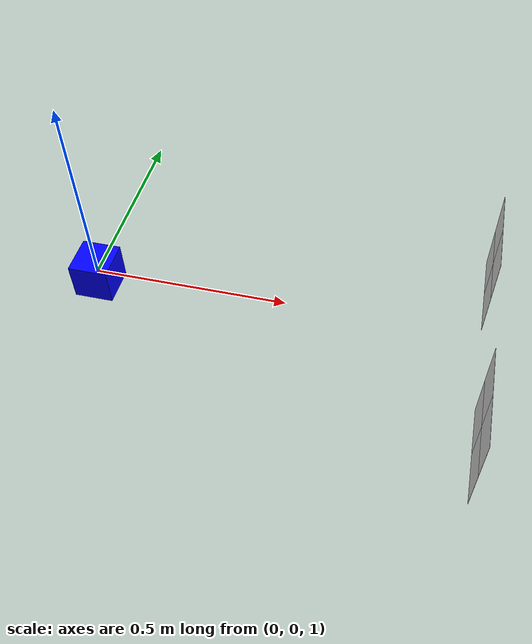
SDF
<?xml version="1.0" ?>

<sdf version="1.10">
  <world name="cam_world">
    <gravity>0 0 -9.81</gravity>
    <physics name="1ms" type="ignored">
      <max_step_size>0.001</max_step_size>
      <real_time_factor>1.0</real_time_factor>
    </physics>
    <plugin filename="gz-sim-physics-system" name="gz::sim::systems::Physics">
    </plugin>
    <plugin filename="gz-sim-scene-broadcaster-system" name="gz::sim::systems::SceneBroadcaster">
    </plugin>
    <plugin filename="ignition-gazebo-sensors-system" name="ignition::gazebo::systems::Sensors">
      <render_engine>ogre</render_engine>
    </plugin>
    <plugin filename="gz-sim-imu-system" name="gz::sim::systems::Imu">
    </plugin>
    <gui fullscreen="0">
      <plugin filename="MinimalScene" name="3D View">
        <gz-gui>
          <title>3D View</title>
          <property type="bool" key="showTitleBar">false</property>
          <property type="string" key="state">docked</property>
        </gz-gui>
        <engine>ogre2</engine>
        <scene>scene</scene>
        <ambient_light>0.4 0.4 0.4</ambient_light>
        <background_color>0.8 0.8 0.8</background_color>
        <camera_pose>-6 0 6 0 0.5 0</camera_pose>
        <camera_clip>
          <near>0.25</near>
          <far>25000</far>
        </camera_clip>
      </plugin>
      <plugin filename="GzSceneManager" name="Scene Manager">
        <gz-gui>
          <property key="resizable" type="bool">false</property>
          <property key="width" type="double">5</property>
          <property key="height" type="double">5</property>
          <property key="state" type="string">floating</property>
          <property key="showTitleBar" type="bool">false</property>
        </gz-gui>
      </plugin>
      <plugin filename="WorldControl" name="World control">
        <gz-gui>
          <title>World control</title>
          <property type="bool" key="showTitleBar">false</property>
          <property type="bool" key="resizable">false</property>
          <property type="double" key="height">72</property>
          <property type="double" key="width">121</property>
          <property type="double" key="z">1</property>

          <property type="string" key="state">floating</property>
          <anchors target="3D View">
            <line own="left" target="left"/>
            <line own="bottom" target="bottom"/>
          </anchors>
        </gz-gui>

        <play_pause>true</play_pause>
        <step>true</step>
        <start_paused>true</start_paused>
        <service>/world/world_demo/control</service>
        <stats_topic>/world/world_demo/stats</stats_topic>
      </plugin>
      <plugin filename="WorldStats" name="World stats">
        <gz-gui>
          <title>World stats</title>
          <property type="bool" key="showTitleBar">false</property>
          <property type="bool" key="resizable">false</property>
          <property type="double" key="height">110</property>
          <property type="double" key="width">290</property>
          <property type="double" key="z">1</property>
          <property type="string" key="state">floating</property>
          <anchors target="3D View">
            <line own="right" target="right"/>
            <line own="bottom" target="bottom"/>
          </anchors>
        </gz-gui>

        <sim_time>true</sim_time>
        <real_time>true</real_time>
        <real_time_factor>true</real_time_factor>
        <iterations>true</iterations>
        <topic>/world/world_demo/stats</topic>
      </plugin>
      <plugin filename="InteractiveViewControl" name="Interactive view control">
        <gz-gui>
        </gz-gui>
      </plugin>
      <plugin filename="EntityTree" name="Entity tree">
      </plugin>
      <plugin filename="ImageDisplay" name="Image Display">
        <topic>camera</topic>
      </plugin>
    </gui>
    <light type="directional" name="sun">
      <cast_shadows>false</cast_shadows>
      <pose>0 0 10 0 0 0</pose>
      <diffuse>0.8 0.8 0.8 1</diffuse>
      <specular>0.0 0.0 0.0 1</specular>
      <attenuation>
        <range>1000</range>
        <constant>0.9</constant>
        <linear>0.01</linear>
        <quadratic>0.001</quadratic>
      </attenuation>
      <direction>-0.5 0.1 -0.9</direction>
    </light>
    <scene>
      <ambient>1.0 1.0 1.0</ambient>
      <background>0.8 0.8 0.8</background>
      <grid>true</grid>
    </scene>
    <model name="ground_plane">
      <static>true</static>
      <link name="link">
        <collision name="collision">
          <geometry>
            <plane>
              <normal>0 0 1</normal>
            </plane>
          </geometry>
        </collision>
      </link>
    </model>
    <model name='arm_with_camera' canonical_link="base_link_arm">
      <pose> 0 0 1.0 0 0 0</pose>
      <link name="base_link_arm">
        <inertial>
          <mass>
            1e-9
          </mass>
          <inertia>
            <ixx>1e-9</ixx>
            <iyy>1e-9</iyy>
            <izz>1e-9</izz>
          </inertia>
        </inertial>
      </link>
      <include>
        <uri>arm</uri>
        <name>arm</name>
        <pose>0 0 0.0 0 0 0</pose>
      </include>
      <include>
        <uri>crooked_rig</uri>
        <name>rig</name>
        <pose>0 0 0 0 0 0</pose>
      </include>
      <joint name='world_joint' type='fixed'>
        <parent>world</parent>
        <child>base_link_arm</child>
      </joint>
      <joint name='arm_joint' type='fixed'>
        <parent>base_link_arm</parent>
        <child>arm::start_link</child>
      </joint>
      <joint name='gripper_joint' type='fixed'>
        <parent>arm::gripper_link</parent>
        <child>rig::base_link</child>
      </joint>
    </model>

    <include>
      <uri>board_00</uri>
      <name>board_00</name>
      <pose relative_to='world'>1.0 0.25 1.0 1.5707963268 0 -1.5707963268</pose>
      <static>1</static>
    </include>
    <include>
      <uri>board_04</uri>
      <name>board_04</name>
      <pose relative_to='world'>1.0 -0.25 1.0 1.5707963268 0 -1.5707963268</pose>
      <static>1</static>
    </include>
  </world>
</sdf>

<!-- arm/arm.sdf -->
<sdf version="1.5">
  <model name='arm' canonical_link="start_link">
    <link name="start_link">
      <inertial>
        <mass>  1e-9 </mass>
        <inertia>
          <ixx>1e-9</ixx>
          <iyy>1e-9</iyy>
          <izz>1e-9</izz>
        </inertia>
      </inertial>
    </link>
    <link name="link_trans_x">
      <pose relative_to="start_link">0 0 0 0 0 0</pose>
      <inertial>
        <mass> 1e-9 </mass>
        <inertia>
          <ixx>1e-9</ixx>
          <iyy>1e-9</iyy>
          <izz>1e-9</izz>
        </inertia>
      </inertial>
    </link>
    <link name="link_trans_y">
      <pose relative_to="link_trans_x">0 0 0 0 0 0</pose>
      <inertial>
        <mass> 1e-9 </mass>
        <inertia>
          <ixx>1e-9</ixx>
          <iyy>1e-9</iyy>
          <izz>1e-9</izz>
        </inertia>
      </inertial>
    </link>
    <link name="link_trans_z">
      <pose relative_to="link_trans_y">0 0 0 0 0 0</pose>
      <inertial>
        <mass> 1e-9 </mass>
        <inertia>
          <ixx>1e-9</ixx>
          <iyy>1e-9</iyy>
          <izz>1e-9</izz>
        </inertia>
      </inertial>
    </link>
    <link name="link_rot_z">
      <pose relative_to="link_trans_z">0 0 0 0 0 0</pose>
      <inertial>
        <mass> 1e-9 </mass>
        <inertia>
          <ixx>1e-3</ixx>
          <iyy>1e-3</iyy>
          <izz>1e-3</izz>
        </inertia>
      </inertial>
    </link>
    <link name="link_rot_y">
      <pose relative_to="link_rot_z">0 0 0 0 0 0</pose>
      <inertial>
        <mass> 1e-9 </mass>
        <inertia>
          <ixx>1e-3</ixx>
          <iyy>1e-3</iyy>
          <izz>1e-3</izz>
        </inertia>
      </inertial>
    </link>
    <link name="gripper_link">
      <pose relative_to='link_rot_y'>0 0 0.0 0 0 0</pose>
      <inertial>
        <mass> 1e-9 </mass>
        <inertia>
          <ixx>1e-3</ixx>
          <iyy>1e-3</iyy>
          <izz>1e-3</izz>
        </inertia>
      </inertial>
    </link>
    <joint name='joint_trans_x' type='prismatic'>
      <parent>start_link</parent>
      <child>link_trans_x</child>
      <axis>
        <xyz>1 0 0</xyz>
        <limit>
          <lower>-1.0e6</lower>
          <upper>1.0e6</upper>
        </limit>
      </axis>
    </joint>
    <joint name='joint_trans_y' type='prismatic'>
      <parent>link_trans_x</parent>
      <child>link_trans_y</child>
      <axis>
        <xyz>0 1 0</xyz>
        <limit>
          <lower>-1.0e6</lower>
          <upper>1.0e6</upper>
        </limit>
      </axis>
    </joint>
    <joint name='joint_trans_z' type='prismatic'>
      <parent>link_trans_y</parent>
      <child>link_trans_z</child>
      <axis>
        <xyz>0 0 1</xyz>
        <limit>
          <lower>-1.0e6</lower>
          <upper>1.0e6</upper>
        </limit>
      </axis>
    </joint>
    <joint name='joint_rot_z' type='revolute'>
      <parent>link_trans_z</parent>
      <child>link_rot_z</child>
      <axis>
        <xyz>0 0 1</xyz>
        <limit>
          <lower>-1.0e6</lower>
          <upper>1.0e6</upper>
        </limit>
      </axis>
    </joint>
    <joint name='joint_rot_y' type='revolute'>
      <parent>link_rot_z</parent>
      <child>link_rot_y</child>
      <axis>
        <xyz>0 1 0</xyz>
        <limit>
          <lower>-1.0e10</lower>
          <upper>1.0e10</upper>
        </limit>
      </axis>
    </joint>
    <joint name='joint_rot_x' type='revolute'>
      <parent>link_rot_y</parent>
      <child>gripper_link</child>
      <axis>
        <xyz>1 0 0</xyz>
        <limit>
          <lower>-1.0e10</lower>
          <upper>1.0e10</upper>
        </limit>
      </axis>
    </joint>

    <!-- ++++++++++++++ CONTROLLERS ++++++++++++++++ -->
    <plugin filename="gz-sim-joint-position-controller-system" name="gz::sim::systems::JointPositionController">
      <joint_name>joint_trans_x</joint_name>
      <topic>x_trans_position</topic>
      <p_gain>0.5</p_gain>
      <i_gain>0.0</i_gain>
      <d_gain>0.5</d_gain>
      <i_max>1e-9</i_max>
      <i_min>-1e-9</i_min>
      <cmd_max>1.0</cmd_max>
      <cmd_min>-1.0</cmd_min>
    </plugin>

    <plugin filename="gz-sim-joint-position-controller-system" name="gz::sim::systems::JointPositionController">
      <joint_name>joint_trans_y</joint_name>
      <topic>y_trans_position</topic>
      <p_gain>0.5</p_gain>
      <i_gain>0.0</i_gain>
      <d_gain>0.5</d_gain>
      <i_max>1e-9</i_max>
      <i_min>-1e-9</i_min>
      <cmd_max>1.0</cmd_max>
      <cmd_min>-1.0</cmd_min>
    </plugin>

    <plugin filename="gz-sim-joint-position-controller-system" name="gz::sim::systems::JointPositionController">
      <joint_name>joint_trans_z</joint_name>
      <topic>z_trans_position</topic>
      <p_gain>0.5</p_gain>
      <i_gain>0.0</i_gain>
      <d_gain>0.5</d_gain>
      <i_max>1e-9</i_max>
      <i_min>-1e-9</i_min>
      <cmd_max>3.0</cmd_max>
      <cmd_min>-3.0</cmd_min>
      <cmd_offset>0.981</cmd_offset>
    </plugin>
    <!-- rotational controllers -->
    <plugin filename="gz-sim-joint-position-controller-system" name="gz::sim::systems::JointPositionController">
      <joint_name>joint_rot_x</joint_name>
      <topic>x_rot_position</topic>
      <p_gain>1.0</p_gain>
      <i_gain>0.0</i_gain>
      <d_gain>0.2</d_gain>
      <i_max>1</i_max>
      <i_min>-1</i_min>
      <cmd_max>2</cmd_max>
      <cmd_min>-2</cmd_min>
    </plugin>
    <plugin filename="gz-sim-joint-position-controller-system" name="gz::sim::systems::JointPositionController">
      <joint_name>joint_rot_y</joint_name>
      <topic>y_rot_position</topic>
      <p_gain>1.0</p_gain>
      <i_gain>0.0</i_gain>
      <d_gain>0.2</d_gain>
      <i_max>1</i_max>
      <i_min>-1</i_min>
      <cmd_max>2</cmd_max>
      <cmd_min>-2</cmd_min>
    </plugin>
    <plugin filename="gz-sim-joint-position-controller-system" name="gz::sim::systems::JointPositionController">
      <joint_name>joint_rot_z</joint_name>
      <topic>z_rot_position</topic>
      <p_gain>1.0</p_gain>
      <i_gain>0.0</i_gain>
      <d_gain>0.2</d_gain>
      <i_max>1</i_max>
      <i_min>-1</i_min>
      <cmd_max>2</cmd_max>
      <cmd_min>-2</cmd_min>
    </plugin>
    <!-- +++++++++++++++++ END OF CONTROLLERS ++++++++++++++++++++-->
  </model>
</sdf>

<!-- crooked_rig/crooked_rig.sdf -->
<sdf version="1.5">
    <model name='crooked_rig' canonical_link="base_link">
        <plugin filename="gz-sim-odometry-publisher-system" name="gz::sim::systems::OdometryPublisher">
            <odom_frame>odom_world</odom_frame>
            <robot_base_frame>base_link</robot_base_frame>
            <dimensions>3</dimensions>
        </plugin>
        <link name="base_link">
            <visual name="visual">
                <geometry>
                    <box>
                        <size>0.1 0.1 0.1</size>
                    </box>
                </geometry>
                <material>
                    <ambient>0.0 0.0 1.0 1</ambient>
                    <diffuse>0.0 0.0 1.0 1</diffuse>
                    <specular>0.0 0.0 1.0 1</specular>
                </material>
            </visual>
            <collision name="collision">
                <geometry>
                    <box>
                        <size>0.1 0.1 0.1</size>
                    </box>
                </geometry>
            </collision>
            <inertial>
                <mass> 1e-1 </mass>
                <inertia>
                    <ixx>1e-3</ixx>
                    <iyy>1e-3</iyy>
                    <izz>1e-3</izz>
                </inertia>
            </inertial>
            <sensor name="camera" type="camera">
                <camera>
                    <horizontal_fov>1.349481884447</horizontal_fov>
                    <image>
                        <width>4096</width>
                        <height>2560</height>
                    </image>
                    <clip>
                        <near>0.1</near>
                        <far>100</far>
                    </clip>
                </camera>
                <always_on>1</always_on>
                <update_rate>10</update_rate>
                <visualize>true</visualize>
                <topic>camera</topic>
            </sensor>
            <sensor name="imu_sensor" type="imu">
                <always_on>1</always_on>
                <update_rate>1000</update_rate>
                <visualize>true</visualize>
                <topic>imu</topic>
                <pose>0.1 0 0 0 0.0 0 </pose>
            </sensor>
        </link>
    </model>
</sdf>

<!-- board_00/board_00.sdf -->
<sdf version="1.5">
   <model name='board_00'>
      <link name='tag_00'>
        <pose relative_to='__model__'>-0.0625 -0.0625 0 0 0 0</pose>
        <visual name='vis_tag_00'>
          <geometry>
            <mesh>
              <scale>0.1 0.1 0.1</scale>
              <uri>model://board_00/tag36_11_00000.dae</uri>
            </mesh>
          </geometry>
        </visual>
      </link>
      <link name='tag_01'>
        <pose relative_to='__model__'>0.0625 -0.0625 0 0 0 0</pose>
        <visual name='vis_tag_01'>
          <geometry>
            <mesh>
              <scale>0.1 0.1 0.1</scale>
              <uri>model://board_00/tag36_11_00001.dae</uri>
            </mesh>
          </geometry>
        </visual>
      </link>
      <link name='tag_02'>
        <pose relative_to='__model__'>-0.0625 0.0625 0 0 0 0</pose>
        <visual name='vis_tag_02'>
          <geometry>
            <mesh>
              <scale>0.1 0.1 0.1</scale>
              <uri>model://board_00/tag36_11_00002.dae</uri>
            </mesh>
          </geometry>
        </visual>
      </link>
      <link name='tag_03'>
        <pose relative_to='__model__'>0.0625 0.0625 0 0 0 0</pose>
        <visual name='vis_tag_03'>
          <geometry>
            <mesh>
              <scale>0.1 0.1 0.1</scale>
              <uri>model://board_00/tag36_11_00003.dae</uri>
            </mesh>
          </geometry>
        </visual>
      </link>
    </model>
 </sdf>

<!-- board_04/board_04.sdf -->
<sdf version="1.5">
   <model name='board_04'>
      <link name='tag_04'>
        <pose relative_to='__model__'>-0.0625 -0.0625 0 0 0 0</pose>
        <visual name='vis_tag_04'>
          <geometry>
            <mesh>
              <scale>0.1 0.1 0.1</scale>
              <uri>model://board_04/tag36_11_00004.dae</uri>
            </mesh>
          </geometry>
        </visual>
      </link>
      <link name='tag_05'>
        <pose relative_to='__model__'>0.0625 -0.0625 0 0 0 0</pose>
        <visual name='vis_tag_05'>
          <geometry>
            <mesh>
              <scale>0.1 0.1 0.1</scale>
              <uri>model://board_04/tag36_11_00005.dae</uri>
            </mesh>
          </geometry>
        </visual>
      </link>
      <link name='tag_06'>
        <pose relative_to='__model__'>-0.0625 0.0625 0 0 0 0</pose>
        <visual name='vis_tag_06'>
          <geometry>
            <mesh>
              <scale>0.1 0.1 0.1</scale>
              <uri>model://board_04/tag36_11_00006.dae</uri>
            </mesh>
          </geometry>
        </visual>
      </link>
      <link name='tag_07'>
        <pose relative_to='__model__'>0.0625 0.0625 0 0 0 0</pose>
        <visual name='vis_tag_07'>
          <geometry>
            <mesh>
              <scale>0.1 0.1 0.1</scale>
              <uri>model://board_04/tag36_11_00007.dae</uri>
            </mesh>
          </geometry>
        </visual>
      </link>
    </model>
 </sdf>
